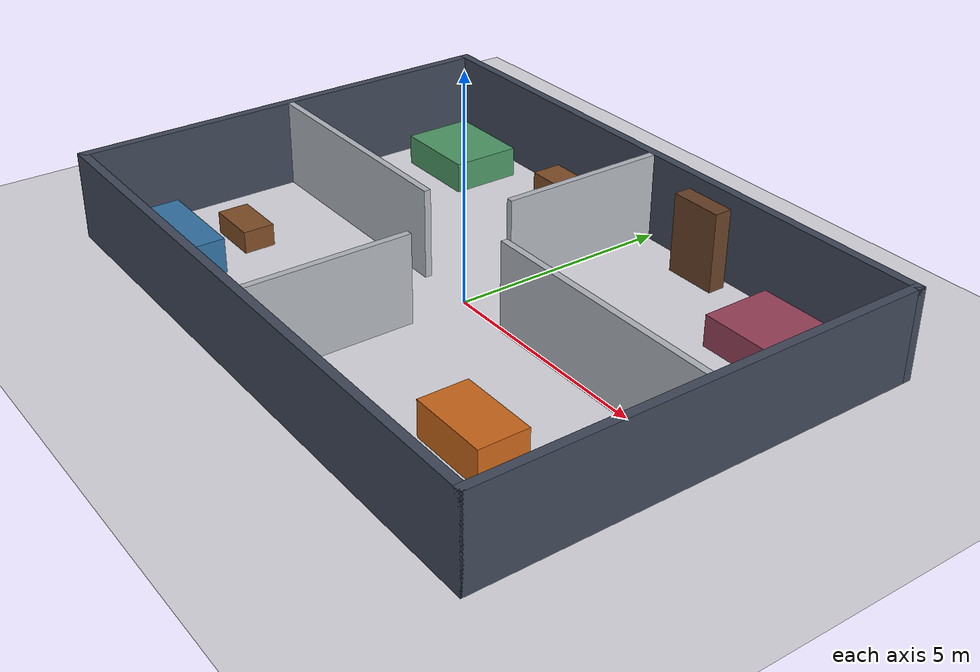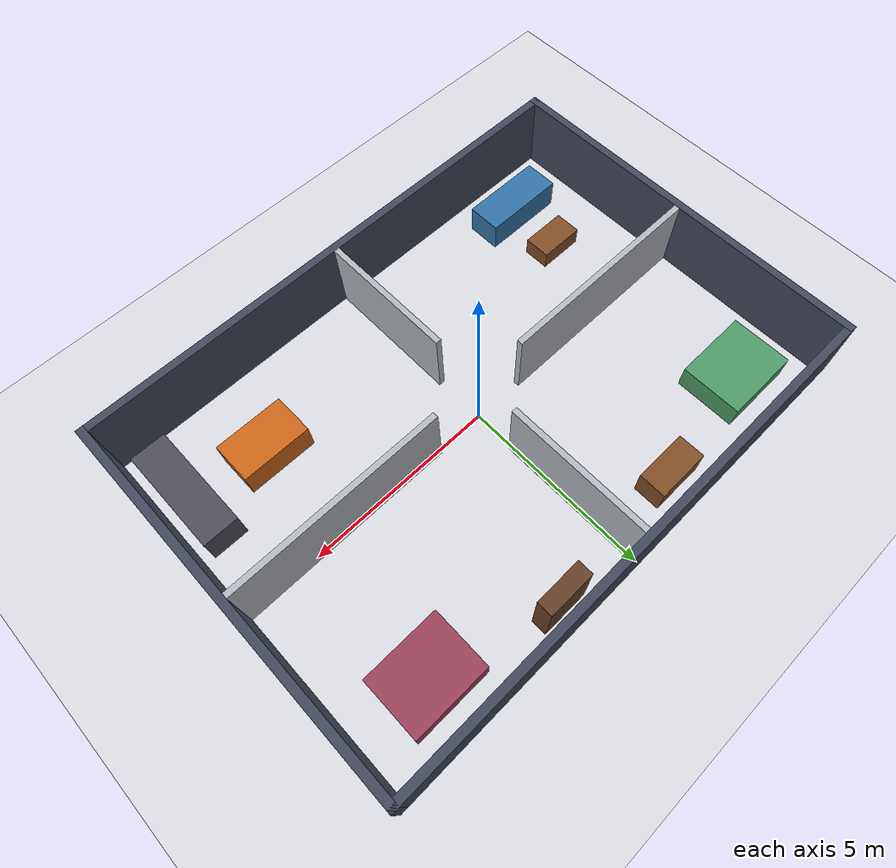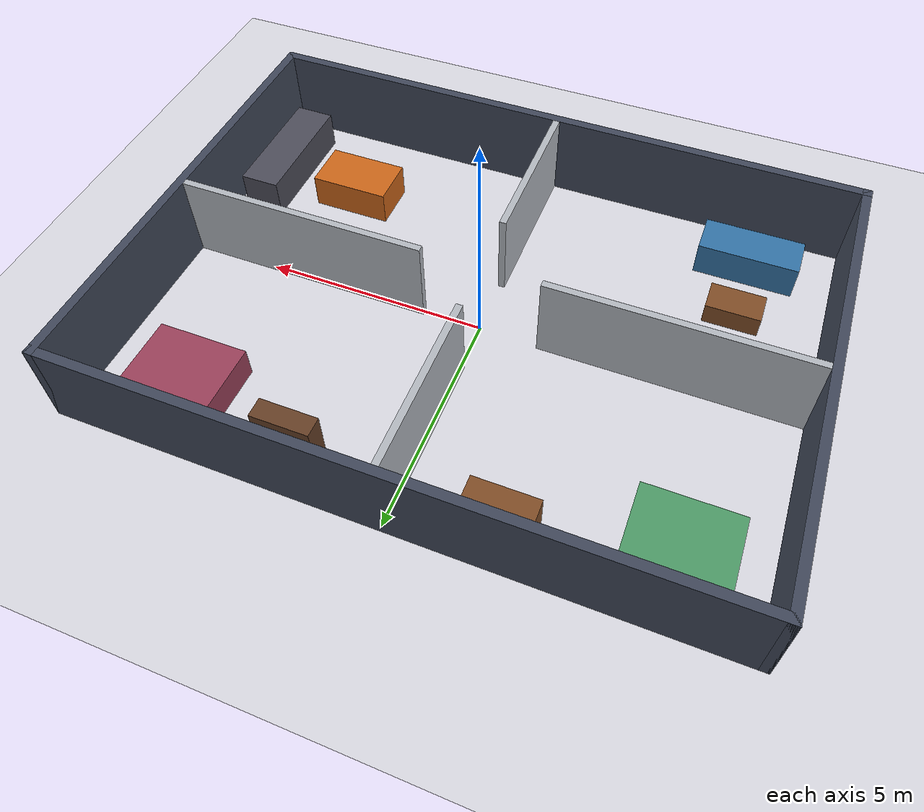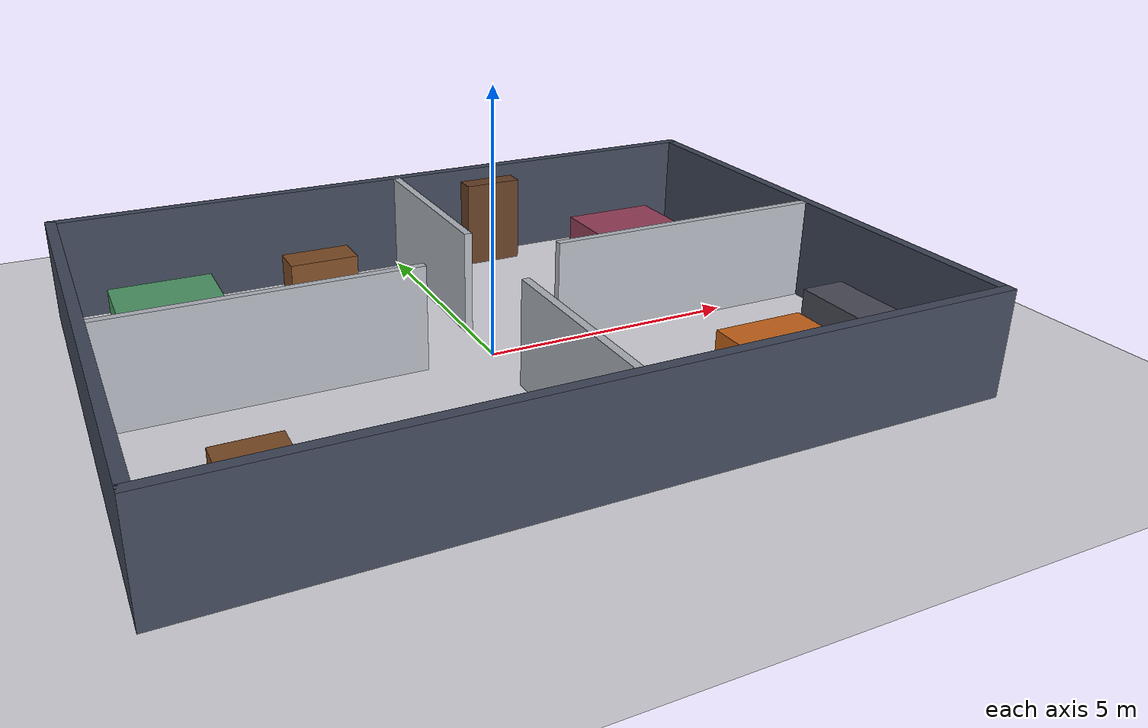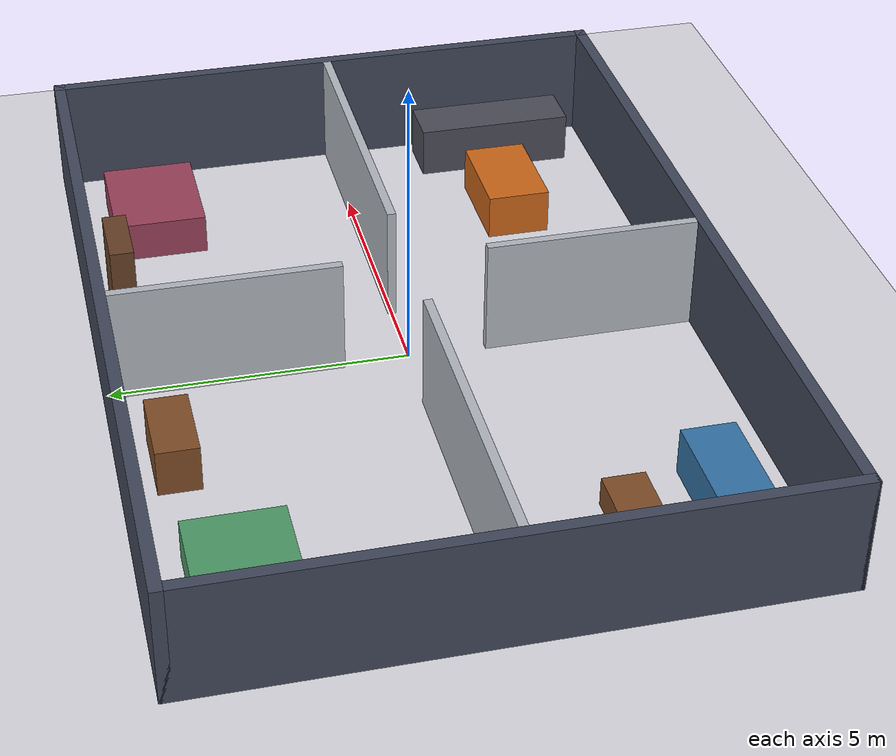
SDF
<?xml version="1.0" ?>
<sdf version="1.8">
  <world name="multiroom_house">
    <!-- Physics parameters -->
    <physics type="ode">
      <real_time_update_rate>1000.0</real_time_update_rate>
      <max_step_size>0.001</max_step_size>
      <real_time_factor>1.0</real_time_factor>
      <ode>
        <solver>
          <type>quick</type>
          <iters>150</iters>
          <sor>1.4</sor>
        </solver>
        <constraints>
          <cfm>0.00001</cfm>
          <erp>0.2</erp>
        </constraints>
      </ode>
    </physics>

    <!-- Essential Gazebo Sim Systems -->
    <plugin filename="gz-sim-physics-system" name="gz::sim::systems::Physics" />
    <plugin filename="gz-sim-user-commands-system" name="gz::sim::systems::UserCommands" />
    <plugin filename="gz-sim-scene-broadcaster-system" name="gz::sim::systems::SceneBroadcaster" />
    <plugin filename="gz-sim-sensors-system" name="gz::sim::systems::Sensors">
      <render_engine>ogre2</render_engine>
    </plugin>
    <plugin filename="gz-sim-imu-system" name="gz::sim::systems::Imu" />

    <!-- Lighting -->
    <light type="directional" name="sun">
      <cast_shadows>false</cast_shadows>
      <pose>0 0 15 0 0 0</pose>
      <diffuse>0.9 0.9 0.9 1</diffuse>
      <specular>0.3 0.3 0.3 1</specular>
      <attenuation>
        <range>1000</range>
        <constant>0.9</constant>
        <linear>0.01</linear>
        <quadratic>0.001</quadratic>
      </attenuation>
      <direction>-0.5 0.2 -1.0</direction>
    </light>

    <!-- Ground Plane (Floor) -->
    <model name="ground_plane">
      <static>true</static>
      <link name="link">
        <collision name="collision">
          <geometry>
            <plane>
              <normal>0 0 1</normal>
              <size>24 20</size>
            </plane>
          </geometry>
          <surface>
            <friction>
              <ode>
                <mu>100</mu>
                <mu2>50</mu2>
              </ode>
            </friction>
          </surface>
        </collision>
        <visual name="visual">
          <geometry>
            <plane>
              <normal>0 0 1</normal>
              <size>24 20</size>
            </plane>
          </geometry>
          <material>
            <ambient>0.85 0.85 0.88 1.0</ambient>
            <diffuse>0.85 0.85 0.88 1.0</diffuse>
            <specular>0.1 0.1 0.1 1.0</specular>
          </material>
        </visual>
      </link>
    </model>

    <!-- EXTERIOR WALLS (14m x 10m Apartment Boundary) -->
    <!-- North Wall -->
    <model name="wall_exterior_north">
      <static>true</static>
      <pose>0 5.0 1.0 0 0 0</pose>
      <link name="link">
        <collision name="c"><geometry><box><size>14.2 0.2 2.0</size></box></geometry></collision>
        <visual name="v"><geometry><box><size>14.2 0.2 2.0</size></box></geometry>
          <material><ambient>0.25 0.28 0.35 1</ambient><diffuse>0.25 0.28 0.35 1</diffuse></material>
        </visual>
      </link>
    </model>

    <!-- South Wall -->
    <model name="wall_exterior_south">
      <static>true</static>
      <pose>0 -5.0 1.0 0 0 0</pose>
      <link name="link">
        <collision name="c"><geometry><box><size>14.2 0.2 2.0</size></box></geometry></collision>
        <visual name="v"><geometry><box><size>14.2 0.2 2.0</size></box></geometry>
          <material><ambient>0.25 0.28 0.35 1</ambient><diffuse>0.25 0.28 0.35 1</diffuse></material>
        </visual>
      </link>
    </model>

    <!-- East Wall -->
    <model name="wall_exterior_east">
      <static>true</static>
      <pose>7.0 0 1.0 0 0 0</pose>
      <link name="link">
        <collision name="c"><geometry><box><size>0.2 10.2 2.0</size></box></geometry></collision>
        <visual name="v"><geometry><box><size>0.2 10.2 2.0</size></box></geometry>
          <material><ambient>0.25 0.28 0.35 1</ambient><diffuse>0.25 0.28 0.35 1</diffuse></material>
        </visual>
      </link>
    </model>

    <!-- West Wall -->
    <model name="wall_exterior_west">
      <static>true</static>
      <pose>-7.0 0 1.0 0 0 0</pose>
      <link name="link">
        <collision name="c"><geometry><box><size>0.2 10.2 2.0</size></box></geometry></collision>
        <visual name="v"><geometry><box><size>0.2 10.2 2.0</size></box></geometry>
          <material><ambient>0.25 0.28 0.35 1</ambient><diffuse>0.25 0.28 0.35 1</diffuse></material>
        </visual>
      </link>
    </model>

    <!-- INTERIOR WALLS & ROOM PARTITIONS -->

    <!-- Main Hallway Wall (separates Left Rooms from Right Rooms) -->
    <!-- Segment North: from y=5 to y=1.2 (doorway at y=0) -->
    <model name="hallway_wall_north">
      <static>true</static>
      <pose>0 3.0 1.0 0 0 0</pose>
      <link name="link">
        <collision name="c"><geometry><box><size>0.15 3.8 2.0</size></box></geometry></collision>
        <visual name="v"><geometry><box><size>0.15 3.8 2.0</size></box></geometry>
          <material><ambient>0.7 0.72 0.75 1</ambient><diffuse>0.7 0.72 0.75 1</diffuse></material>
        </visual>
      </link>
    </model>

    <!-- Segment South: from y=-1.2 to y=-5.0 -->
    <model name="hallway_wall_south">
      <static>true</static>
      <pose>0 -3.1 1.0 0 0 0</pose>
      <link name="link">
        <collision name="c"><geometry><box><size>0.15 3.6 2.0</size></box></geometry></collision>
        <visual name="v"><geometry><box><size>0.15 3.6 2.0</size></box></geometry>
          <material><ambient>0.7 0.72 0.75 1</ambient><diffuse>0.7 0.72 0.75 1</diffuse></material>
        </visual>
      </link>
    </model>

    <!-- Room Divider West (Between Living Room and Bedroom 1) -->
    <!-- From x=-7 to x=-1.2 (doorway into hallway) -->
    <model name="partition_west">
      <static>true</static>
      <pose>-4.1 0 1.0 0 0 0</pose>
      <link name="link">
        <collision name="c"><geometry><box><size>5.6 0.15 2.0</size></box></geometry></collision>
        <visual name="v"><geometry><box><size>5.6 0.15 2.0</size></box></geometry>
          <material><ambient>0.7 0.72 0.75 1</ambient><diffuse>0.7 0.72 0.75 1</diffuse></material>
        </visual>
      </link>
    </model>

    <!-- Room Divider East (Between Kitchen/Dining and Bedroom 2) -->
    <!-- From x=1.2 to x=7 (doorway into hallway) -->
    <model name="partition_east">
      <static>true</static>
      <pose>4.1 0 1.0 0 0 0</pose>
      <link name="link">
        <collision name="c"><geometry><box><size>5.6 0.15 2.0</size></box></geometry></collision>
        <visual name="v"><geometry><box><size>5.6 0.15 2.0</size></box></geometry>
          <material><ambient>0.7 0.72 0.75 1</ambient><diffuse>0.7 0.72 0.75 1</diffuse></material>
        </visual>
      </link>
    </model>

    <!-- FURNITURE OBSTACLES -->

    <!-- Living Room (South-West): Sofa, Coffee Table, TV Stand -->
    <model name="furniture_sofa">
      <static>true</static>
      <pose>-5.0 -3.8 0.4 0 0 0</pose>
      <link name="link">
        <collision name="c"><geometry><box><size>2.2 0.9 0.8</size></box></geometry></collision>
        <visual name="v"><geometry><box><size>2.2 0.9 0.8</size></box></geometry>
          <material><ambient>0.2 0.45 0.65 1</ambient><diffuse>0.2 0.45 0.65 1</diffuse></material>
        </visual>
      </link>
    </model>

    <model name="furniture_coffee_table">
      <static>true</static>
      <pose>-5.0 -2.3 0.25 0 0 0</pose>
      <link name="link">
        <collision name="c"><geometry><box><size>1.2 0.7 0.5</size></box></geometry></collision>
        <visual name="v"><geometry><box><size>1.2 0.7 0.5</size></box></geometry>
          <material><ambient>0.5 0.3 0.15 1</ambient><diffuse>0.5 0.3 0.15 1</diffuse></material>
        </visual>
      </link>
    </model>

    <!-- Bedroom 1 (North-West): Bed and Desk -->
    <model name="furniture_bed_1">
      <static>true</static>
      <pose>-5.2 3.6 0.35 0 0 0</pose>
      <link name="link">
        <collision name="c"><geometry><box><size>2.0 1.6 0.7</size></box></geometry></collision>
        <visual name="v"><geometry><box><size>2.0 1.6 0.7</size></box></geometry>
          <material><ambient>0.3 0.6 0.4 1</ambient><diffuse>0.3 0.6 0.4 1</diffuse></material>
        </visual>
      </link>
    </model>

    <model name="furniture_desk_1">
      <static>true</static>
      <pose>-2.0 4.2 0.4 0 0 0</pose>
      <link name="link">
        <collision name="c"><geometry><box><size>1.4 0.7 0.8</size></box></geometry></collision>
        <visual name="v"><geometry><box><size>1.4 0.7 0.8</size></box></geometry>
          <material><ambient>0.5 0.3 0.15 1</ambient><diffuse>0.5 0.3 0.15 1</diffuse></material>
        </visual>
      </link>
    </model>

    <!-- Kitchen / Dining (South-East): Dining Table & Chairs -->
    <model name="furniture_dining_table">
      <static>true</static>
      <pose>4.2 -2.8 0.4 0 0 0</pose>
      <link name="link">
        <collision name="c"><geometry><box><size>1.8 1.1 0.8</size></box></geometry></collision>
        <visual name="v"><geometry><box><size>1.8 1.1 0.8</size></box></geometry>
          <material><ambient>0.8 0.4 0.1 1</ambient><diffuse>0.8 0.4 0.1 1</diffuse></material>
        </visual>
      </link>
    </model>

    <model name="furniture_kitchen_counter">
      <static>true</static>
      <pose>6.2 -3.0 0.45 0 0 0</pose>
      <link name="link">
        <collision name="c"><geometry><box><size>0.9 2.8 0.9</size></box></geometry></collision>
        <visual name="v"><geometry><box><size>0.9 2.8 0.9</size></box></geometry>
          <material><ambient>0.3 0.3 0.35 1</ambient><diffuse>0.3 0.3 0.35 1</diffuse></material>
        </visual>
      </link>
    </model>

    <!-- Bedroom 2 (North-East): Bed, Bookshelf -->
    <model name="furniture_bed_2">
      <static>true</static>
      <pose>5.0 3.6 0.35 0 0 0</pose>
      <link name="link">
        <collision name="c"><geometry><box><size>2.0 1.6 0.7</size></box></geometry></collision>
        <visual name="v"><geometry><box><size>2.0 1.6 0.7</size></box></geometry>
          <material><ambient>0.6 0.25 0.35 1</ambient><diffuse>0.6 0.25 0.35 1</diffuse></material>
        </visual>
      </link>
    </model>

    <model name="furniture_bookshelf">
      <static>true</static>
      <pose>2.0 4.5 0.9 0 0 0</pose>
      <link name="link">
        <collision name="c"><geometry><box><size>1.2 0.4 1.8</size></box></geometry></collision>
        <visual name="v"><geometry><box><size>1.2 0.4 1.8</size></box></geometry>
          <material><ambient>0.4 0.25 0.15 1</ambient><diffuse>0.4 0.25 0.15 1</diffuse></material>
        </visual>
      </link>
    </model>

  </world>
</sdf>
